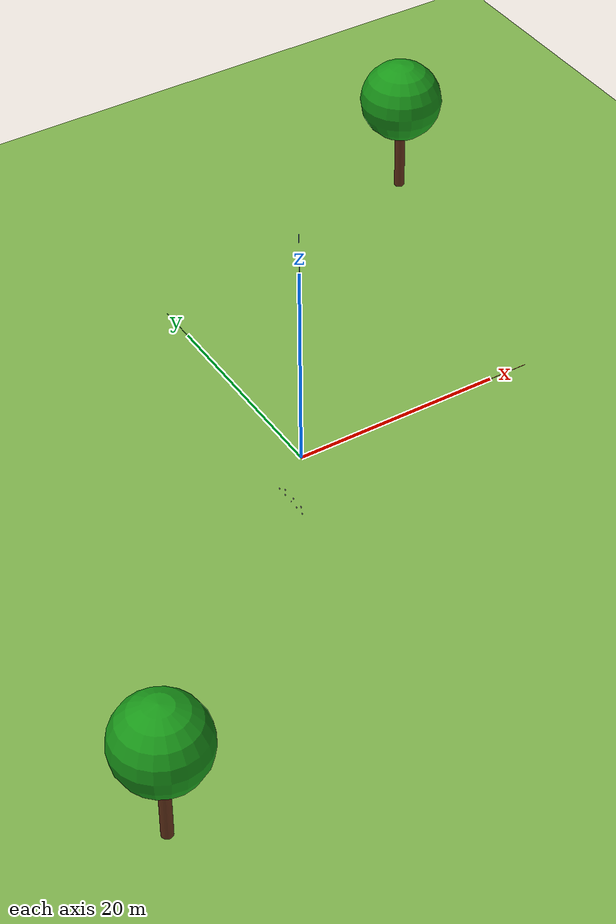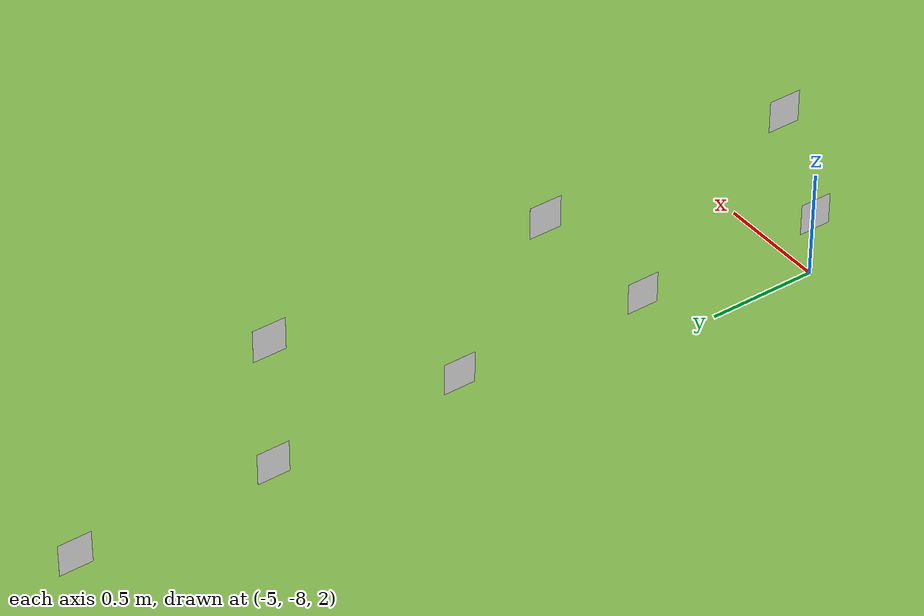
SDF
<sdf version="1.10">
 <world name="warehouse_outdoor">
  <gravity>0 0 -9.8000000000000007</gravity>
  <physics type="ode">
   <max_step_size>0.004</max_step_size>
   <real_time_factor>1.0</real_time_factor>
   <real_time_update_rate>250</real_time_update_rate>
  </physics>
  <scene>
   <ambient>0.8 0.8 0.8 1</ambient>
   <background>0.6 0.8 1.0 1</background>
   <shadows>true</shadows>
   <grid>false</grid>
  </scene>
  <magnetic_field>6e-06 2.3e-05 -4.2e-05</magnetic_field>
  <atmosphere type="adiabatic"/>
  <spherical_coordinates>
   <surface_model>EARTH_WGS84</surface_model>
   <world_frame_orientation>ENU</world_frame_orientation>
   <latitude_deg>10.772175109674038</latitude_deg>
   <longitude_deg>106.65789107082472</longitude_deg>
   <elevation>0</elevation>
  </spherical_coordinates>
  <model name="ground_plane">
   <static>true</static>
   <link name="link">
    <collision name="collision">
     <geometry><plane><normal>0 0 1</normal><size>200 200</size></plane></geometry>
    </collision>
    <visual name="visual">
     <geometry><plane><normal>0 0 1</normal><size>200 200</size></plane></geometry>
     <material>
      <ambient>0.5 0.7 0.3 1</ambient>
      <diffuse>0.5 0.7 0.3 1</diffuse>
      <specular>0 0 0 1</specular>
     </material>
    </visual>
    <inertial>
     <mass>1</mass>
     <inertia><ixx>1</ixx><ixy>0</ixy><ixz>0</ixz><iyy>1</iyy><iyz>0</iyz><izz>1</izz></inertia>
    </inertial>
   </link>
  </model>
  <model name="qr_shelfbig4_1">
   <static>true</static>
   <pose>-4.9 -4.5 2.2 0 0 0</pose>
   <link name="qr_link">
    <visual name="qr_visual">
     <geometry><plane><normal>1 0 0</normal><size>0.15 0.15</size></plane></geometry>
     <material>
      <ambient>1 1 1 1</ambient>
      <diffuse>1 1 1 1</diffuse>
      <pbr><metal><albedo_map>resources/QR/qr.png</albedo_map></metal></pbr>
     </material>
    </visual>
   </link>
  </model>
  <model name="qr_shelfbig4_2">
   <static>true</static>
   <pose>-4.9 -5.4 2.2 0 0 0</pose>
   <link name="qr_link">
    <visual name="qr_visual">
     <geometry><plane><normal>1 0 0</normal><size>0.15 0.15</size></plane></geometry>
     <material>
      <ambient>1 1 1 1</ambient>
      <diffuse>1 1 1 1</diffuse>
      <pbr><metal><albedo_map>resources/QR/qr.png</albedo_map></metal></pbr>
     </material>
    </visual>
   </link>
  </model>
  <model name="qr_shelfbig4_3">
   <static>true</static>
   <pose>-4.88 -6.3 2.2 0 0 0</pose>
   <link name="qr_link">
    <visual name="qr_visual">
     <geometry><plane><normal>1 0 0</normal><size>0.15 0.15</size></plane></geometry>
     <material>
      <ambient>1 1 1 1</ambient>
      <diffuse>1 1 1 1</diffuse>
      <pbr><metal><albedo_map>resources/QR/qr.png</albedo_map></metal></pbr>
     </material>
    </visual>
   </link>
  </model>
  <model name="qr_shelfbig4_4">
   <static>true</static>
   <pose>-4.9 -7.2 2.2 0 0 0</pose>
   <link name="qr_link">
    <visual name="qr_visual">
     <geometry><plane><normal>1 0 0</normal><size>0.15 0.15</size></plane></geometry>
     <material>
      <ambient>1 1 1 1</ambient>
      <diffuse>1 1 1 1</diffuse>
      <pbr><metal><albedo_map>resources/QR/qr.png</albedo_map></metal></pbr>
     </material>
    </visual>
   </link>
  </model>
  <model name="qr_shelfbig4_5">
   <static>true</static>
   <pose>-4.9 -8.1 2.2 0 0 0</pose>
   <link name="qr_link">
    <visual name="qr_visual">
     <geometry><plane><normal>1 0 0</normal><size>0.15 0.15</size></plane></geometry>
     <material>
      <ambient>1 1 1 1</ambient>
      <diffuse>1 1 1 1</diffuse>
      <pbr><metal><albedo_map>resources/QR/qr.png</albedo_map></metal></pbr>
     </material>
    </visual>
   </link>
  </model>
  <model name="qr_shelfbig4_6">
   <static>true</static>
   <pose>-4.9 -5.4 2.81 0 0 0</pose>
   <link name="qr_link">
    <visual name="qr_visual">
     <geometry><plane><normal>1 0 0</normal><size>0.15 0.15</size></plane></geometry>
     <material>
      <ambient>1 1 1 1</ambient>
      <diffuse>1 1 1 1</diffuse>
      <pbr><metal><albedo_map>resources/QR/qr.png</albedo_map></metal></pbr>
     </material>
    </visual>
   </link>
  </model>
  <model name="qr_shelfbig4_7">
   <static>true</static>
   <pose>-4.9 -6.7 2.81 0 0 0</pose>
   <link name="qr_link">
    <visual name="qr_visual">
     <geometry><plane><normal>1 0 0</normal><size>0.15 0.15</size></plane></geometry>
     <material>
      <ambient>1 1 1 1</ambient>
      <diffuse>1 1 1 1</diffuse>
      <pbr><metal><albedo_map>resources/QR/qr.png</albedo_map></metal></pbr>
     </material>
    </visual>
   </link>
  </model>
  <model name="qr_shelfbig4_8">
   <static>true</static>
   <pose>-4.9 -7.9 2.81 0 0 0</pose>
   <link name="qr_link">
    <visual name="qr_visual">
     <geometry><plane><normal>1 0 0</normal><size>0.15 0.15</size></plane></geometry>
     <material>
      <ambient>1 1 1 1</ambient>
      <diffuse>1 1 1 1</diffuse>
      <pbr><metal><albedo_map>resources/QR/qr.png</albedo_map></metal></pbr>
     </material>
    </visual>
   </link>
  </model>
  <light name="sun" type="directional">
   <pose>0 0 50 0 0 0</pose>
   <intensity>1.2</intensity>
   <direction>0 0 -1</direction>
   <diffuse>1 1 1 1</diffuse>
   <specular>0.8 0.8 0.8 1</specular>
   <attenuation><range>1000</range><linear>0</linear><constant>1</constant><quadratic>0</quadratic></attenuation>
  </light>
  <model name="tree_1">
   <static>true</static>
   <pose>-30 -30 0 0 0 0</pose>
   <link name="link">
    <visual name="trunk">
     <geometry><cylinder><radius>0.5</radius><length>8</length></cylinder></geometry>
     <material><ambient>0.4 0.2 0.1 1</ambient><diffuse>0.4 0.2 0.1 1</diffuse></material>
     <pose>0 0 4 0 0 0</pose>
    </visual>
    <visual name="leaves">
     <geometry><sphere><radius>4</radius></sphere></geometry>
     <material><ambient>0.1 0.6 0.1 1</ambient><diffuse>0.1 0.6 0.1 1</diffuse></material>
     <pose>0 0 10 0 0 0</pose>
    </visual>
    <collision name="trunk_collision">
     <geometry><cylinder><radius>0.5</radius><length>8</length></cylinder></geometry>
     <pose>0 0 4 0 0 0</pose>
    </collision>
   </link>
  </model>
  <model name="tree_2">
   <static>true</static>
   <pose>30 30 0 0 0 0</pose>
   <link name="link">
    <visual name="trunk">
     <geometry><cylinder><radius>0.5</radius><length>8</length></cylinder></geometry>
     <material><ambient>0.4 0.2 0.1 1</ambient><diffuse>0.4 0.2 0.1 1</diffuse></material>
     <pose>0 0 4 0 0 0</pose>
    </visual>
    <visual name="leaves">
     <geometry><sphere><radius>4</radius></sphere></geometry>
     <material><ambient>0.1 0.6 0.1 1</ambient><diffuse>0.1 0.6 0.1 1</diffuse></material>
     <pose>0 0 10 0 0 0</pose>
    </visual>
    <collision name="trunk_collision">
     <geometry><cylinder><radius>0.5</radius><length>8</length></cylinder></geometry>
     <pose>0 0 4 0 0 0</pose>
    </collision>
   </link>
  </model>
  <model name="origin_marker">
   <static>true</static>
   <link name="link">
    <visual name="marker">
     <geometry><sphere><radius>0.05</radius></sphere></geometry>
     <material><ambient>1 0 1 1</ambient><diffuse>1 0 1 1</diffuse></material>
    </visual>
    <visual name="x_axis">
     <geometry><cylinder><radius>0.02</radius><length>24</length></cylinder></geometry>
     <material>
      <script><uri>file://media/materials/scripts/gazebo.material</uri><name>Gazebo/Red</name></script>
     </material>
     <pose>12 0 0 0 -1.5708 0</pose>
    </visual>
    <visual name="y_axis">
     <geometry><cylinder><radius>0.02</radius><length>24</length></cylinder></geometry>
     <material>
      <script><uri>file://media/materials/scripts/gazebo.material</uri><name>Gazebo/Green</name></script>
     </material>
     <pose>0 12 0 -1.5708 0 0</pose>
    </visual>
    <visual name="z_axis">
     <geometry><cylinder><radius>0.02</radius><length>24</length></cylinder></geometry>
     <material>
      <script><uri>file://media/materials/scripts/gazebo.material</uri><name>Gazebo/Blue</name></script>
     </material>
     <pose>0 0 12 0 0 0</pose>
    </visual>
   </link>
  </model>
 </world>
</sdf>
